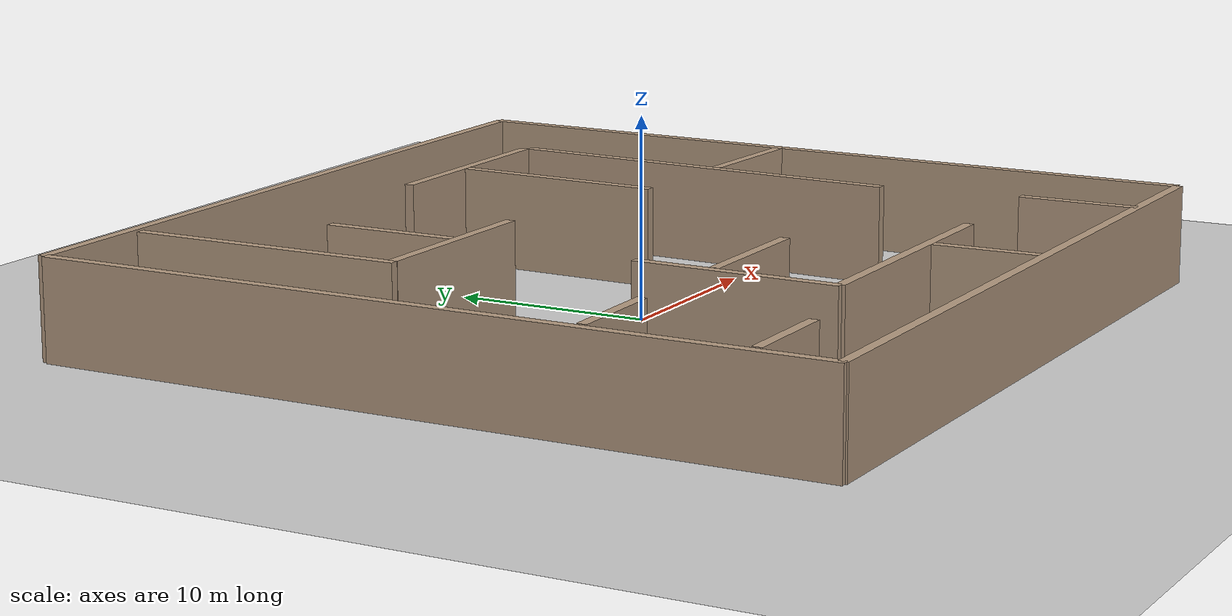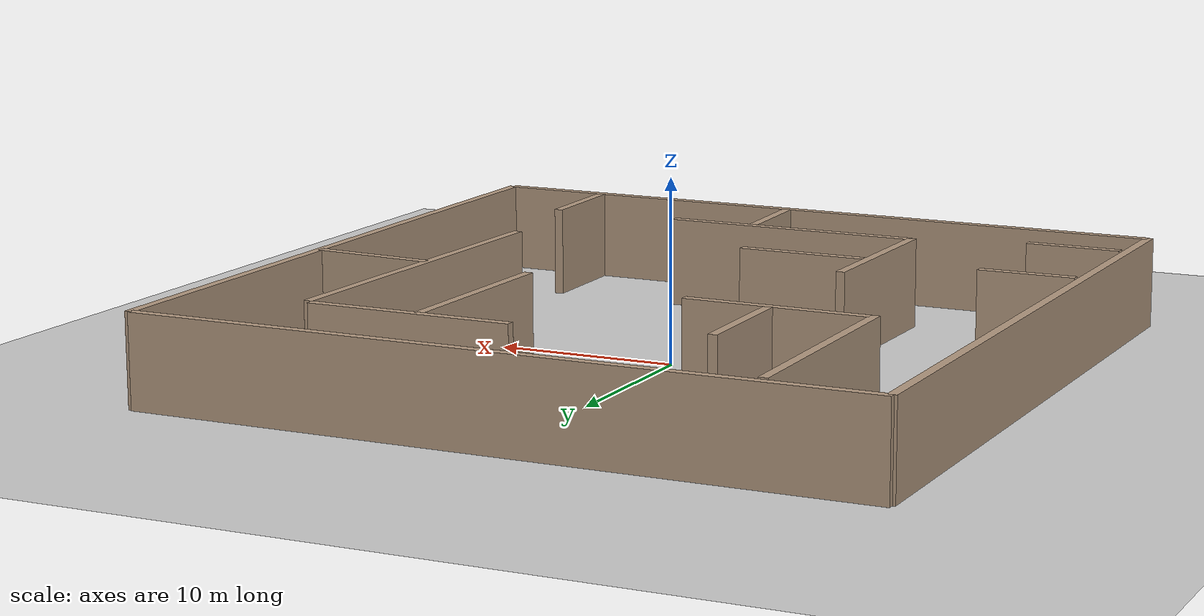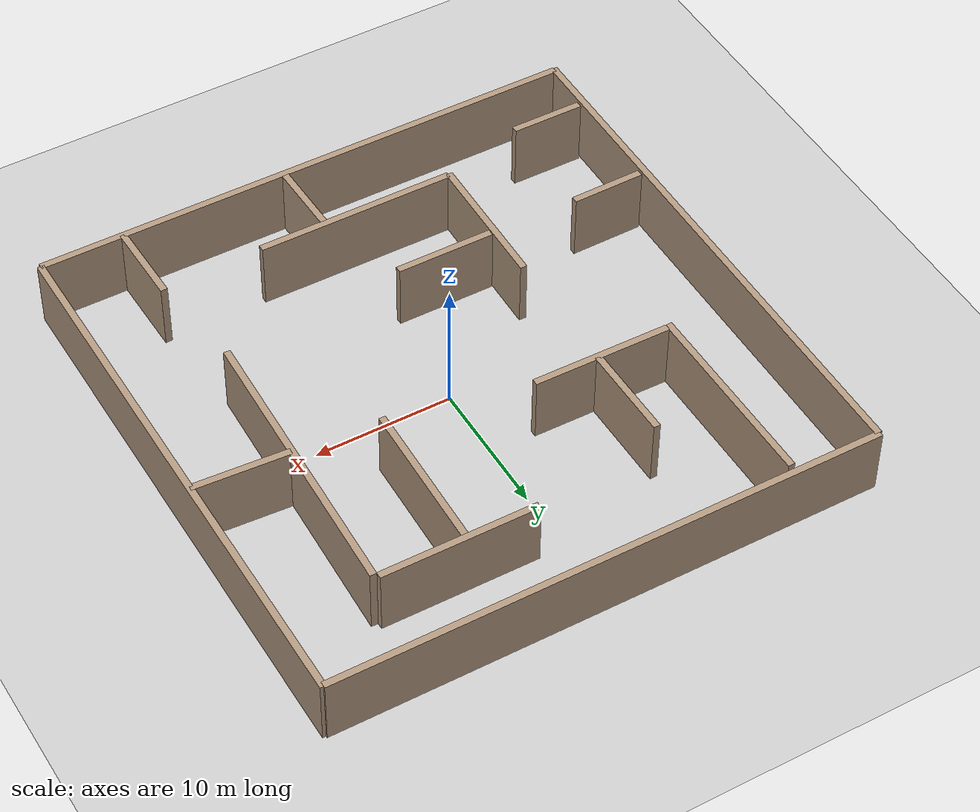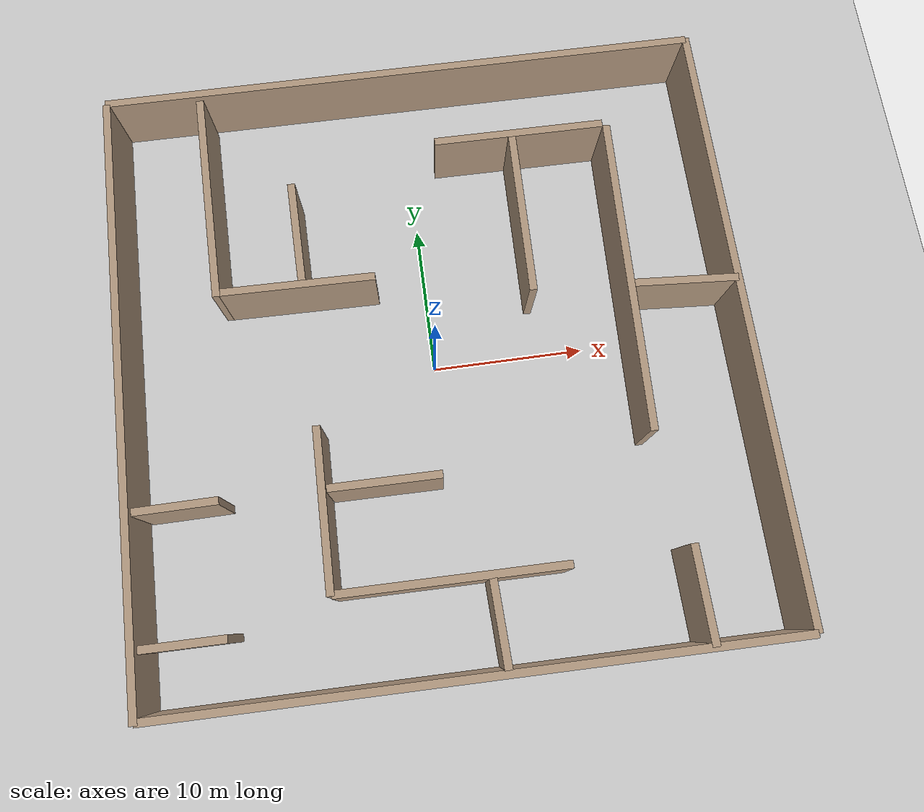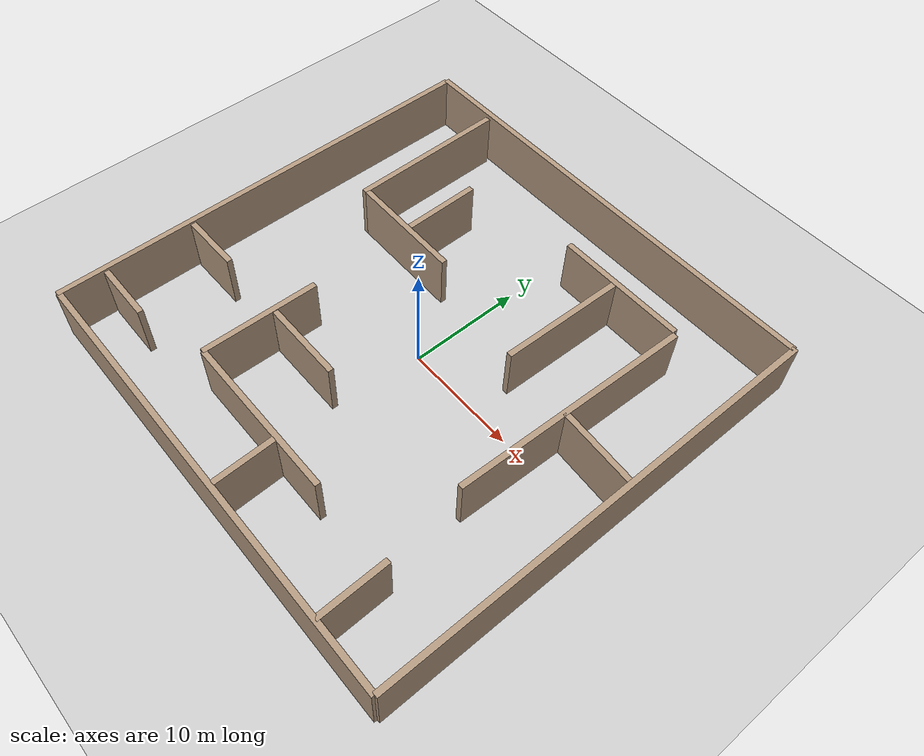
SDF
<?xml version="1.0" encoding="UTF-8"?>
<!-- Gazebo Harmonic world template — walls inserted by make_world.py -->
<sdf version="1.9">
  <world name="custom">

    <physics type="ode">
      <max_step_size>0.004</max_step_size>
      <real_time_factor>1.0</real_time_factor>
      <real_time_update_rate>250</real_time_update_rate>
    </physics>
    <plugin name="gz::sim::systems::Physics" filename="gz-sim-physics-system"/>
    <plugin name="gz::sim::systems::UserCommands" filename="gz-sim-user-commands-system"/>
    <plugin name="gz::sim::systems::SceneBroadcaster" filename="gz-sim-scene-broadcaster-system"/>
    <plugin name="gz::sim::systems::Contact" filename="gz-sim-contact-system"/>
    <plugin name="gz::sim::systems::Imu" filename="gz-sim-imu-system"/>
    <plugin name="gz::sim::systems::AirPressure" filename="gz-sim-air-pressure-system"/>
    <plugin name="gz::sim::systems::ApplyLinkWrench" filename="gz-sim-apply-link-wrench-system"/>
    <plugin name="gz::sim::systems::NavSat" filename="gz-sim-navsat-system"/>
    <plugin name="gz::sim::systems::Sensors" filename="gz-sim-sensors-system">
      <render_engine>ogre2</render_engine>
    </plugin>
    <gui fullscreen="false">
      <plugin filename="MinimalScene" name="3D View">
        <gz-gui>
          <title>3D View</title>
          <property type="bool" key="showTitleBar">false</property>
          <property type="string" key="state">docked</property>
        </gz-gui>
        <engine>ogre2</engine>
        <scene>scene</scene>
        <ambient_light>0.4 0.4 0.4</ambient_light>
        <background_color>0.8 0.8 0.8</background_color>
        <camera_pose>-6 0 6 0 0.5 0</camera_pose>
        <camera_clip>
          <near>0.25</near>
          <far>25000</far>
        </camera_clip>
      </plugin>
      <plugin filename="EntityContextMenuPlugin" name="Entity context menu">
        <gz-gui>
          <property key="state" type="string">floating</property>
          <property key="width" type="double">5</property>
          <property key="height" type="double">5</property>
          <property key="showTitleBar" type="bool">false</property>
        </gz-gui>
      </plugin>
      <plugin filename="GzSceneManager" name="Scene Manager">
        <gz-gui>
          <property key="resizable" type="bool">false</property>
          <property key="width" type="double">5</property>
          <property key="height" type="double">5</property>
          <property key="state" type="string">floating</property>
          <property key="showTitleBar" type="bool">false</property>
        </gz-gui>
      </plugin>
      <plugin filename="InteractiveViewControl" name="Interactive view control">
        <gz-gui>
          <property key="resizable" type="bool">false</property>
          <property key="width" type="double">5</property>
          <property key="height" type="double">5</property>
          <property key="state" type="string">floating</property>
          <property key="showTitleBar" type="bool">false</property>
        </gz-gui>
      </plugin>
      <plugin filename="CameraTracking" name="Camera Tracking">
        <gz-gui>
          <property key="resizable" type="bool">false</property>
          <property key="width" type="double">5</property>
          <property key="height" type="double">5</property>
          <property key="state" type="string">floating</property>
          <property key="showTitleBar" type="bool">false</property>
        </gz-gui>
      </plugin>
      <plugin filename="MarkerManager" name="Marker manager">
        <gz-gui>
          <property key="resizable" type="bool">false</property>
          <property key="width" type="double">5</property>
          <property key="height" type="double">5</property>
          <property key="state" type="string">floating</property>
          <property key="showTitleBar" type="bool">false</property>
        </gz-gui>
      </plugin>
      <plugin filename="SelectEntities" name="Select Entities">
        <gz-gui>
          <anchors target="Select entities">
            <line own="right" target="right"/>
            <line own="top" target="top"/>
          </anchors>
          <property key="resizable" type="bool">false</property>
          <property key="width" type="double">5</property>
          <property key="height" type="double">5</property>
          <property key="state" type="string">floating</property>
          <property key="showTitleBar" type="bool">false</property>
        </gz-gui>
      </plugin>
      <plugin filename="VisualizationCapabilities" name="Visualization Capabilities">
        <gz-gui>
          <property key="resizable" type="bool">false</property>
          <property key="width" type="double">5</property>
          <property key="height" type="double">5</property>
          <property key="state" type="string">floating</property>
          <property key="showTitleBar" type="bool">false</property>
        </gz-gui>
      </plugin>
      <plugin filename="Spawn" name="Spawn Entities">
        <gz-gui>
          <anchors target="Select entities">
            <line own="right" target="right"/>
            <line own="top" target="top"/>
          </anchors>
          <property key="resizable" type="bool">false</property>
          <property key="width" type="double">5</property>
          <property key="height" type="double">5</property>
          <property key="state" type="string">floating</property>
          <property key="showTitleBar" type="bool">false</property>
        </gz-gui>
      </plugin>
      <plugin name="World control" filename="WorldControl">
        <gz-gui>
          <title>World control</title>
          <property type="bool" key="showTitleBar">0</property>
          <property type="bool" key="resizable">0</property>
          <property type="double" key="height">72</property>
          <property type="double" key="width">121</property>
          <property type="double" key="z">1</property>
          <property type="string" key="state">floating</property>
          <anchors target="3D View">
            <line own="left" target="left"/>
            <line own="bottom" target="bottom"/>
          </anchors>
        </gz-gui>
        <play_pause>1</play_pause>
        <step>1</step>
        <start_paused>1</start_paused>
      </plugin>
      <plugin name="World stats" filename="WorldStats">
        <gz-gui>
          <title>World stats</title>
          <property type="bool" key="showTitleBar">0</property>
          <property type="bool" key="resizable">0</property>
          <property type="double" key="height">110</property>
          <property type="double" key="width">290</property>
          <property type="double" key="z">1</property>
          <property type="string" key="state">floating</property>
          <anchors target="3D View">
            <line own="right" target="right"/>
            <line own="bottom" target="bottom"/>
          </anchors>
        </gz-gui>
        <sim_time>1</sim_time>
        <real_time>1</real_time>
        <real_time_factor>1</real_time_factor>
        <iterations>1</iterations>
      </plugin>
      <plugin name="Entity tree" filename="EntityTree"/>
    </gui>
    <gravity>0 0 -9.8</gravity>
    <magnetic_field>6e-06 2.3e-05 -4.2e-05</magnetic_field>
    <atmosphere type="adiabatic"/>
    <scene>
      <grid>false</grid>
      <ambient>0.4 0.4 0.4 1</ambient>
      <background>0.7 0.7 0.7 1</background>
      <shadows>true</shadows>
    </scene>

    <model name="ground_plane">
      <static>true</static>
      <link name="link">
        <collision name="collision">
          <geometry>
            <plane>
              <normal>0 0 1</normal>
              <size>1 1</size>
            </plane>
          </geometry>
          <surface>
            <friction>
              <ode/>
            </friction>
            <bounce/>
            <contact/>
          </surface>
        </collision>
        <visual name="visual">
          <geometry>
            <plane>
              <normal>0 0 1</normal>
              <size>80.0000 80.0000</size>
            </plane>
          </geometry>
          <material>
            <ambient>0.8 0.8 0.8 1</ambient>
            <diffuse>0.8 0.8 0.8 1</diffuse>
            <specular>0.8 0.8 0.8 1</specular>
          </material>
        </visual>
        <pose>0 0 0 0 -0 0</pose>
        <inertial>
          <pose>0 0 0 0 -0 0</pose>
          <mass>1</mass>
          <inertia>
            <ixx>1</ixx>
            <ixy>0</ixy>
            <ixz>0</ixz>
            <iyy>1</iyy>
            <iyz>0</iyz>
            <izz>1</izz>
          </inertia>
        </inertial>
        <enable_wind>false</enable_wind>
      </link>
      <pose>0 0 0 0 -0 0</pose>
      <self_collide>false</self_collide>
    </model>

    <model name="wall_000">
      <static>true</static>
      <pose>-19.9410 0.0000 2.5000 0 0 -1.572771</pose>
      <link name="wall_link">
        <visual name="wall_visual">
          <geometry>
            <box>
              <size>39.8428 0.5000 5.0000</size>
            </box>
          </geometry>
          <material>
            <ambient>0.6 0.5 0.4 1</ambient>
            <diffuse>0.7 0.6 0.5 1</diffuse>
          </material>
        </visual>
        <collision name="wall_collision">
          <geometry>
            <box>
              <size>39.8428 0.5000 5.0000</size>
            </box>
          </geometry>
          <surface>
            <friction>
              <ode/>
            </friction>
            <bounce/>
            <contact/>
          </surface>
        </collision>
      </link>
    </model>
    <model name="wall_001">
      <static>true</static>
      <pose>0.0098 -19.8820 2.5000 0 0 -0.005903</pose>
      <link name="wall_link">
        <visual name="wall_visual">
          <geometry>
            <box>
              <size>39.9810 0.5000 5.0000</size>
            </box>
          </geometry>
          <material>
            <ambient>0.6 0.5 0.4 1</ambient>
            <diffuse>0.7 0.6 0.5 1</diffuse>
          </material>
        </visual>
        <collision name="wall_collision">
          <geometry>
            <box>
              <size>39.9810 0.5000 5.0000</size>
            </box>
          </geometry>
          <surface>
            <friction>
              <ode/>
            </friction>
            <bounce/>
            <contact/>
          </surface>
        </collision>
      </link>
    </model>
    <model name="wall_002">
      <static>true</static>
      <pose>20.0000 -0.0197 2.5000 0 0 1.570796</pose>
      <link name="wall_link">
        <visual name="wall_visual">
          <geometry>
            <box>
              <size>39.9607 0.5000 5.0000</size>
            </box>
          </geometry>
          <material>
            <ambient>0.6 0.5 0.4 1</ambient>
            <diffuse>0.7 0.6 0.5 1</diffuse>
          </material>
        </visual>
        <collision name="wall_collision">
          <geometry>
            <box>
              <size>39.9607 0.5000 5.0000</size>
            </box>
          </geometry>
          <surface>
            <friction>
              <ode/>
            </friction>
            <bounce/>
            <contact/>
          </surface>
        </collision>
      </link>
    </model>
    <model name="wall_003">
      <static>true</static>
      <pose>0.0000 19.9213 2.5000 0 0 3.137660</pose>
      <link name="wall_link">
        <visual name="wall_visual">
          <geometry>
            <box>
              <size>40.0003 0.5000 5.0000</size>
            </box>
          </geometry>
          <material>
            <ambient>0.6 0.5 0.4 1</ambient>
            <diffuse>0.7 0.6 0.5 1</diffuse>
          </material>
        </visual>
        <collision name="wall_collision">
          <geometry>
            <box>
              <size>40.0003 0.5000 5.0000</size>
            </box>
          </geometry>
          <surface>
            <friction>
              <ode/>
            </friction>
            <bounce/>
            <contact/>
          </surface>
        </collision>
      </link>
    </model>
    <model name="wall_004">
      <static>true</static>
      <pose>-13.5497 12.3500 2.5000 0 0 -1.562440</pose>
      <link name="wall_link">
        <visual name="wall_visual">
          <geometry>
            <box>
              <size>14.1205 0.5000 5.0000</size>
            </box>
          </geometry>
          <material>
            <ambient>0.6 0.5 0.4 1</ambient>
            <diffuse>0.7 0.6 0.5 1</diffuse>
          </material>
        </visual>
        <collision name="wall_collision">
          <geometry>
            <box>
              <size>14.1205 0.5000 5.0000</size>
            </box>
          </geometry>
          <surface>
            <friction>
              <ode/>
            </friction>
            <bounce/>
            <contact/>
          </surface>
        </collision>
      </link>
    </model>
    <model name="wall_005">
      <static>true</static>
      <pose>-8.2596 5.4474 2.5000 0 0 -0.015624</pose>
      <link name="wall_link">
        <visual name="wall_visual">
          <geometry>
            <box>
              <size>10.0701 0.5000 5.0000</size>
            </box>
          </geometry>
          <material>
            <ambient>0.6 0.5 0.4 1</ambient>
            <diffuse>0.7 0.6 0.5 1</diffuse>
          </material>
        </visual>
        <collision name="wall_collision">
          <geometry>
            <box>
              <size>10.0701 0.5000 5.0000</size>
            </box>
          </geometry>
          <surface>
            <friction>
              <ode/>
            </friction>
            <bounce/>
            <contact/>
          </surface>
        </collision>
      </link>
    </model>
    <model name="wall_006">
      <static>true</static>
      <pose>7.4926 14.2970 2.5000 0 0 -0.006920</pose>
      <link name="wall_link">
        <visual name="wall_visual">
          <geometry>
            <box>
              <size>11.3670 0.5000 5.0000</size>
            </box>
          </geometry>
          <material>
            <ambient>0.6 0.5 0.4 1</ambient>
            <diffuse>0.7 0.6 0.5 1</diffuse>
          </material>
        </visual>
        <collision name="wall_collision">
          <geometry>
            <box>
              <size>11.3670 0.5000 5.0000</size>
            </box>
          </geometry>
          <surface>
            <friction>
              <ode/>
            </friction>
            <bounce/>
            <contact/>
          </surface>
        </collision>
      </link>
    </model>
    <model name="wall_007">
      <static>true</static>
      <pose>13.0777 3.5792 2.5000 0 0 -1.602680</pose>
      <link name="wall_link">
        <visual name="wall_visual">
          <geometry>
            <box>
              <size>20.9743 0.5000 5.0000</size>
            </box>
          </geometry>
          <material>
            <ambient>0.6 0.5 0.4 1</ambient>
            <diffuse>0.7 0.6 0.5 1</diffuse>
          </material>
        </visual>
        <collision name="wall_collision">
          <geometry>
            <box>
              <size>20.9743 0.5000 5.0000</size>
            </box>
          </geometry>
          <surface>
            <friction>
              <ode/>
            </friction>
            <bounce/>
            <contact/>
          </surface>
        </collision>
      </link>
    </model>
    <model name="wall_008">
      <static>true</static>
      <pose>-8.0236 -9.0659 2.5000 0 0 -1.586062</pose>
      <link name="wall_link">
        <visual name="wall_visual">
          <geometry>
            <box>
              <size>10.3060 0.5000 5.0000</size>
            </box>
          </geometry>
          <material>
            <ambient>0.6 0.5 0.4 1</ambient>
            <diffuse>0.7 0.6 0.5 1</diffuse>
          </material>
        </visual>
        <collision name="wall_collision">
          <geometry>
            <box>
              <size>10.3060 0.5000 5.0000</size>
            </box>
          </geometry>
          <surface>
            <friction>
              <ode/>
            </friction>
            <bounce/>
            <contact/>
          </surface>
        </collision>
      </link>
    </model>
    <model name="wall_009">
      <static>true</static>
      <pose>-0.7866 -14.1790 2.5000 0 0 -0.005435</pose>
      <link name="wall_link">
        <visual name="wall_visual">
          <geometry>
            <box>
              <size>14.4742 0.5000 5.0000</size>
            </box>
          </geometry>
          <material>
            <ambient>0.6 0.5 0.4 1</ambient>
            <diffuse>0.7 0.6 0.5 1</diffuse>
          </material>
        </visual>
        <collision name="wall_collision">
          <geometry>
            <box>
              <size>14.4742 0.5000 5.0000</size>
            </box>
          </geometry>
          <surface>
            <friction>
              <ode/>
            </friction>
            <bounce/>
            <contact/>
          </surface>
        </collision>
      </link>
    </model>
    <model name="wall_010">
      <static>true</static>
      <pose>16.5487 2.5369 2.5000 0 0 -0.068270</pose>
      <link name="wall_link">
        <visual name="wall_visual">
          <geometry>
            <box>
              <size>6.9188 0.5000 5.0000</size>
            </box>
          </geometry>
          <material>
            <ambient>0.6 0.5 0.4 1</ambient>
            <diffuse>0.7 0.6 0.5 1</diffuse>
          </material>
        </visual>
        <collision name="wall_collision">
          <geometry>
            <box>
              <size>6.9188 0.5000 5.0000</size>
            </box>
          </geometry>
          <surface>
            <friction>
              <ode/>
            </friction>
            <bounce/>
            <contact/>
          </surface>
        </collision>
      </link>
    </model>
    <model name="wall_011">
      <static>true</static>
      <pose>1.6519 -17.0501 2.5000 0 0 -1.540954</pose>
      <link name="wall_link">
        <visual name="wall_visual">
          <geometry>
            <box>
              <size>5.2728 0.5000 5.0000</size>
            </box>
          </geometry>
          <material>
            <ambient>0.6 0.5 0.4 1</ambient>
            <diffuse>0.7 0.6 0.5 1</diffuse>
          </material>
        </visual>
        <collision name="wall_collision">
          <geometry>
            <box>
              <size>5.2728 0.5000 5.0000</size>
            </box>
          </geometry>
          <surface>
            <friction>
              <ode/>
            </friction>
            <bounce/>
            <contact/>
          </surface>
        </collision>
      </link>
    </model>
    <model name="wall_012">
      <static>true</static>
      <pose>-16.9125 -15.8112 2.5000 0 0 -0.007463</pose>
      <link name="wall_link">
        <visual name="wall_visual">
          <geometry>
            <box>
              <size>5.2705 0.5000 5.0000</size>
            </box>
          </geometry>
          <material>
            <ambient>0.6 0.5 0.4 1</ambient>
            <diffuse>0.7 0.6 0.5 1</diffuse>
          </material>
        </visual>
        <collision name="wall_collision">
          <geometry>
            <box>
              <size>5.2705 0.5000 5.0000</size>
            </box>
          </geometry>
          <surface>
            <friction>
              <ode/>
            </friction>
            <bounce/>
            <contact/>
          </surface>
        </collision>
      </link>
    </model>
    <model name="wall_013">
      <static>true</static>
      <pose>-16.8928 -7.7483 2.5000 0 0 0.007407</pose>
      <link name="wall_link">
        <visual name="wall_visual">
          <geometry>
            <box>
              <size>5.3099 0.5000 5.0000</size>
            </box>
          </geometry>
          <material>
            <ambient>0.6 0.5 0.4 1</ambient>
            <diffuse>0.7 0.6 0.5 1</diffuse>
          </material>
        </visual>
        <collision name="wall_collision">
          <geometry>
            <box>
              <size>5.3099 0.5000 5.0000</size>
            </box>
          </geometry>
          <surface>
            <friction>
              <ode/>
            </friction>
            <bounce/>
            <contact/>
          </surface>
        </collision>
      </link>
    </model>
    <model name="wall_014">
      <static>true</static>
      <pose>-7.9843 9.0069 2.5000 0 0 -1.559497</pose>
      <link name="wall_link">
        <visual name="wall_visual">
          <geometry>
            <box>
              <size>6.9621 0.5000 5.0000</size>
            </box>
          </geometry>
          <material>
            <ambient>0.6 0.5 0.4 1</ambient>
            <diffuse>0.7 0.6 0.5 1</diffuse>
          </material>
        </visual>
        <collision name="wall_collision">
          <geometry>
            <box>
              <size>6.9621 0.5000 5.0000</size>
            </box>
          </geometry>
          <surface>
            <friction>
              <ode/>
            </friction>
            <bounce/>
            <contact/>
          </surface>
        </collision>
      </link>
    </model>
    <model name="wall_015">
      <static>true</static>
      <pose>6.8830 8.6529 2.5000 0 0 -1.592145</pose>
      <link name="wall_link">
        <visual name="wall_visual">
          <geometry>
            <box>
              <size>11.0546 0.5000 5.0000</size>
            </box>
          </geometry>
          <material>
            <ambient>0.6 0.5 0.4 1</ambient>
            <diffuse>0.7 0.6 0.5 1</diffuse>
          </material>
        </visual>
        <collision name="wall_collision">
          <geometry>
            <box>
              <size>11.0546 0.5000 5.0000</size>
            </box>
          </geometry>
          <surface>
            <friction>
              <ode/>
            </friction>
            <bounce/>
            <contact/>
          </surface>
        </collision>
      </link>
    </model>
    <model name="wall_016">
      <static>true</static>
      <pose>-4.1298 -7.8663 2.5000 0 0 -0.005494</pose>
      <link name="wall_link">
        <visual name="wall_visual">
          <geometry>
            <box>
              <size>7.1584 0.5000 5.0000</size>
            </box>
          </geometry>
          <material>
            <ambient>0.6 0.5 0.4 1</ambient>
            <diffuse>0.7 0.6 0.5 1</diffuse>
          </material>
        </visual>
        <collision name="wall_collision">
          <geometry>
            <box>
              <size>7.1584 0.5000 5.0000</size>
            </box>
          </geometry>
          <surface>
            <friction>
              <ode/>
            </friction>
            <bounce/>
            <contact/>
          </surface>
        </collision>
      </link>
    </model>
    <model name="wall_017">
      <static>true</static>
      <pose>13.8643 -16.9518 2.5000 0 0 -1.551191</pose>
      <link name="wall_link">
        <visual name="wall_visual">
          <geometry>
            <box>
              <size>6.0189 0.5000 5.0000</size>
            </box>
          </geometry>
          <material>
            <ambient>0.6 0.5 0.4 1</ambient>
            <diffuse>0.7 0.6 0.5 1</diffuse>
          </material>
        </visual>
        <collision name="wall_collision">
          <geometry>
            <box>
              <size>6.0189 0.5000 5.0000</size>
            </box>
          </geometry>
          <surface>
            <friction>
              <ode/>
            </friction>
            <bounce/>
            <contact/>
          </surface>
        </collision>
      </link>
    </model>

    <light name="sunUTC" type="directional">
      <pose>0 0 500 0 -0 0</pose>
      <cast_shadows>true</cast_shadows>
      <intensity>1</intensity>
      <direction>0.001 0.625 -0.78</direction>
      <diffuse>0.904 0.904 0.904 1</diffuse>
      <specular>0.271 0.271 0.271 1</specular>
      <attenuation>
        <range>2000</range>
        <linear>0</linear>
        <constant>1</constant>
        <quadratic>0</quadratic>
      </attenuation>
      <spot>
        <inner_angle>0</inner_angle>
        <outer_angle>0</outer_angle>
        <falloff>0</falloff>
      </spot>
    </light>
    <spherical_coordinates>
      <surface_model>EARTH_WGS84</surface_model>
      <world_frame_orientation>ENU</world_frame_orientation>
      <latitude_deg>47.397971057728974</latitude_deg>
      <longitude_deg> 8.546163739800146</longitude_deg>
      <elevation>0</elevation>
    </spherical_coordinates>

  </world>
</sdf>
